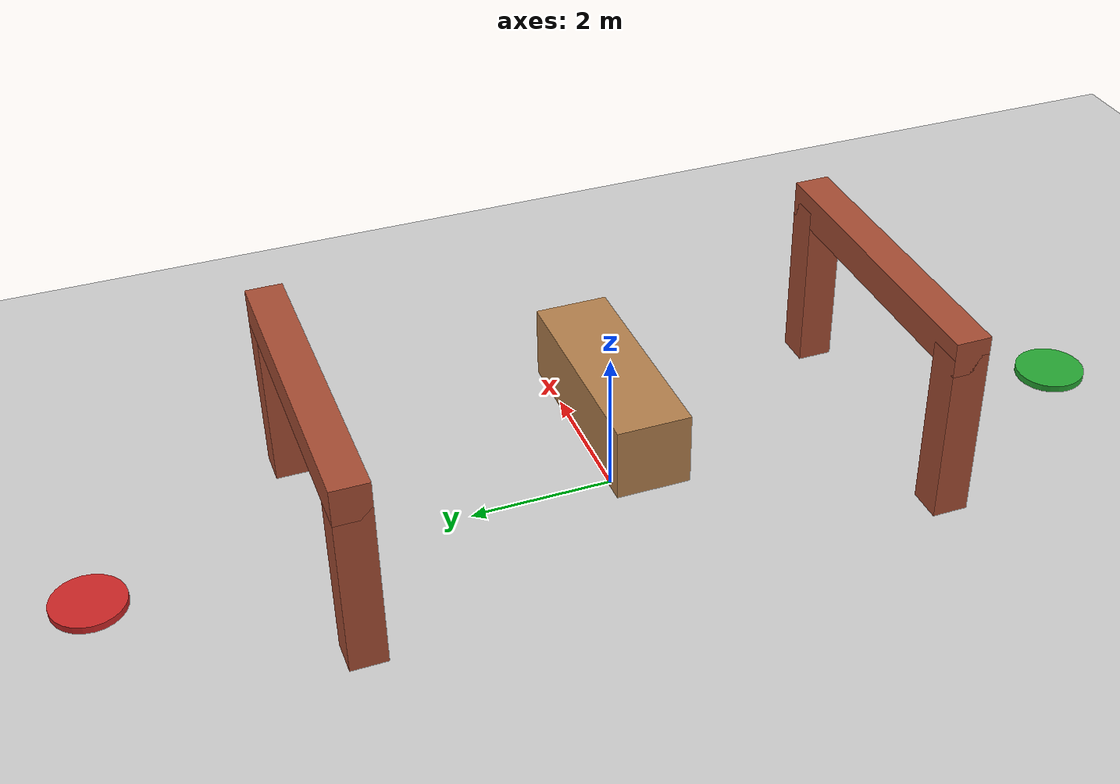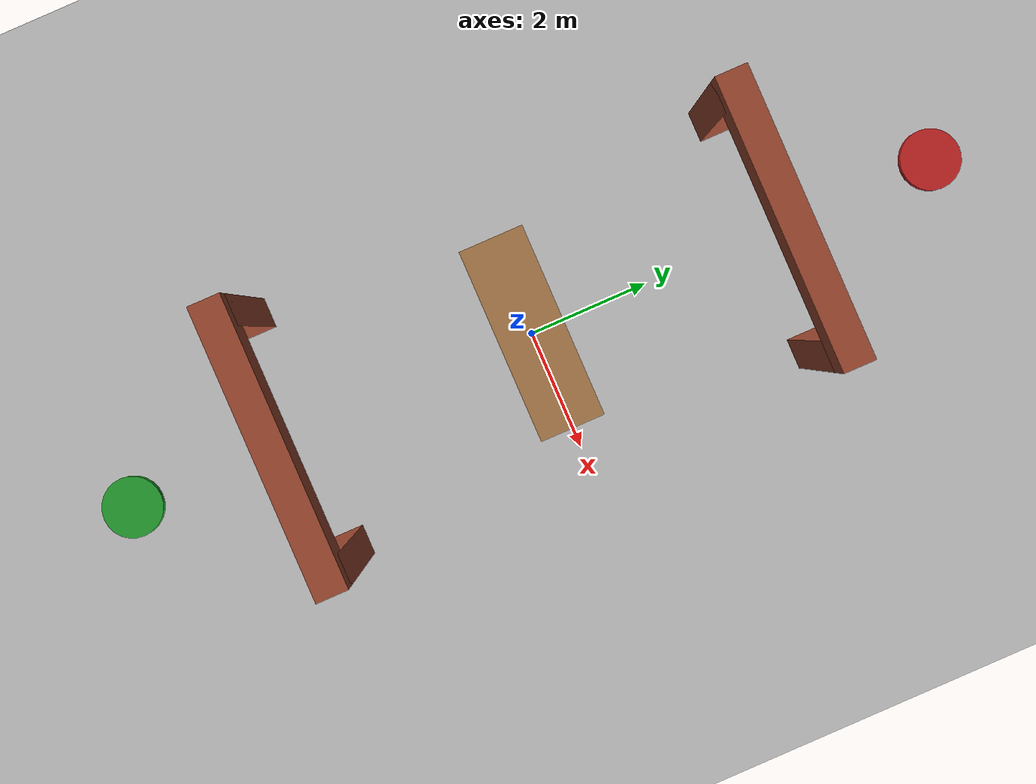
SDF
<?xml version="1.0" ?>
<sdf version="1.5">
  <world name="astar_3dliar">

    <gui fullscreen='0'>
      <camera name='user_camera'>
        <pose>12.0 0.0 10.0 0 0.6 3.14</pose>
        <view_controller>orbit</view_controller>
      </camera>
    </gui>

    <physics name='default_physics' default='0' type='ode'>
      <gravity>0 0 -9.8066</gravity>
      <max_step_size>0.004</max_step_size>
      <real_time_factor>1000.0</real_time_factor>
      <real_time_update_rate>250</real_time_update_rate>
    </physics>

    <include>
      <uri>model://sun</uri>
    </include>

    <model name='ground_plane'>
      <static>1</static>
      <link name='link'>
        <collision name='collision'>
          <geometry><plane><normal>0 0 1</normal><size>50 50</size></plane></geometry>
        </collision>
        <visual name='visual'>
          <geometry><plane><normal>0 0 1</normal><size>50 50</size></plane></geometry>
          <material>
            <script><uri>file://media/materials/scripts/gazebo.material</uri><name>Gazebo/Grey</name></script>
          </material>
        </visual>
      </link>
    </model>

    <model name='center_floating_block'>
      <static>true</static>
      <pose>0 0 1.5 0 0 0</pose>
      <link name='link'>
        <visual name='v'><geometry><box><size>3 1 1</size></box></geometry> <material><script><name>Gazebo/Wood</name><uri>file://media/materials/scripts/gazebo.material</uri></script></material>
        </visual>
        <collision name='c'><geometry><box><size>3 1 1</size></box></geometry></collision>
      </link>
    </model>

    <model name='entrance_gate_left'>
      <static>true</static>
      <pose>-2 -4 1.25 0 0 0</pose>
      <link name='link'>
        <visual name='v'><geometry><box><size>0.5 0.5 2.5</size></box></geometry>
        <material><script><name>Gazebo/Bricks</name><uri>file://media/materials/scripts/gazebo.material</uri></script></material>
        </visual>
        <collision name='c'><geometry><box><size>0.5 0.5 2.5</size></box></geometry></collision>
      </link>
    </model>

    <model name='entrance_gate_right'>
      <static>true</static>
      <pose>2 -4 1.25 0 0 0</pose>
      <link name='link'>
        <visual name='v'><geometry><box><size>0.5 0.5 2.5</size></box></geometry>
        <material><script><name>Gazebo/Bricks</name><uri>file://media/materials/scripts/gazebo.material</uri></script></material>
        </visual>
        <collision name='c'><geometry><box><size>0.5 0.5 2.5</size></box></geometry></collision>
      </link>
    </model>

    <model name='entrance_gate_top'>
      <static>true</static>
      <pose>0 -4 2.5 0 0 0</pose>
      <link name='link'>
        <visual name='v'><geometry><box><size>4.5 0.5 0.5</size></box></geometry> <material><script><name>Gazebo/Bricks</name><uri>file://media/materials/scripts/gazebo.material</uri></script></material>
        </visual>
        <collision name='c'><geometry><box><size>4.5 0.5 0.5</size></box></geometry></collision>
      </link>
    </model>

    <model name='exit_gate_left'>
      <static>true</static>
      <pose>-2 4 1.25 0 0 0</pose>
      <link name='link'>
        <visual name='v'><geometry><box><size>0.5 0.5 2.5</size></box></geometry>
        <material><script><name>Gazebo/Bricks</name><uri>file://media/materials/scripts/gazebo.material</uri></script></material>
        </visual>
        <collision name='c'><geometry><box><size>0.5 0.5 2.5</size></box></geometry></collision>
      </link>
    </model>

    <model name='exit_gate_right'>
      <static>true</static>
      <pose>2 4 1.25 0 0 0</pose>
      <link name='link'>
        <visual name='v'><geometry><box><size>0.5 0.5 2.5</size></box></geometry>
        <material><script><name>Gazebo/Bricks</name><uri>file://media/materials/scripts/gazebo.material</uri></script></material>
        </visual>
        <collision name='c'><geometry><box><size>0.5 0.5 2.5</size></box></geometry></collision>
      </link>
    </model>

    <model name='exit_gate_top'>
      <static>true</static>
      <pose>0 4 2.5 0 0 0</pose>
      <link name='link'>
        <visual name='v'><geometry><box><size>4.5 0.5 0.5</size></box></geometry>
        <material><script><name>Gazebo/Bricks</name><uri>file://media/materials/scripts/gazebo.material</uri></script></material>
        </visual>
        <collision name='c'><geometry><box><size>4.5 0.5 0.5</size></box></geometry></collision>
      </link>
    </model>

    <model name='start_mark'>
      <static>true</static>
      <pose>0 -7 0.1 0 0 0</pose>
      <link name='link'>
        <visual name='v'><geometry><cylinder><radius>0.5</radius><length>0.1</length></cylinder></geometry>
        <material><script><name>Gazebo/Green</name><uri>file://media/materials/scripts/gazebo.material</uri></script></material>
        </visual>
      </link>
    </model>

    <model name='goal_mark'>
      <static>true</static>
      <pose>0 7 0.1 0 0 0</pose>
      <link name='link'>
        <visual name='v'><geometry><cylinder><radius>0.5</radius><length>0.1</length></cylinder></geometry>
        <material><script><name>Gazebo/Red</name><uri>file://media/materials/scripts/gazebo.material</uri></script></material>
        </visual>
      </link>
    </model>

  </world>
</sdf>
